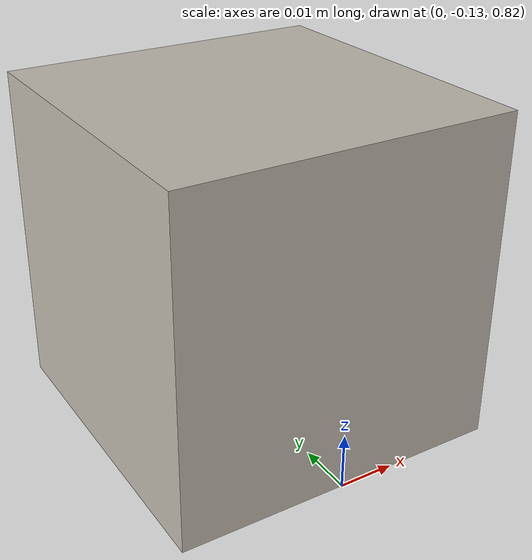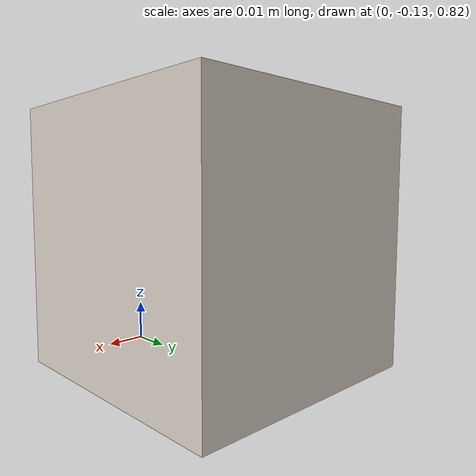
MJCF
<mujoco model="cube">
  <asset>
    <texture file="../textures/metal.png" name="tex-metal"/>
    <material name="metal" reflectance="0.7" texrepeat="1 1" texture="tex-metal" texuniform="true"/>
  </asset>
  <worldbody>
    <body>
      <body name="collision" pos="0 -0.1 0.85" quat="1 0 0 0">
        <geom pos="0 0 0" type="box" size="0.03 0.03 0.03" solimp="0.998 0.998 0.001" solref="0.001 1" density="1500" friction="0.95 0.3 0.1" material="metal" group="1" condim="4"/>
      </body>
    </body>
  </worldbody>
</mujoco>
